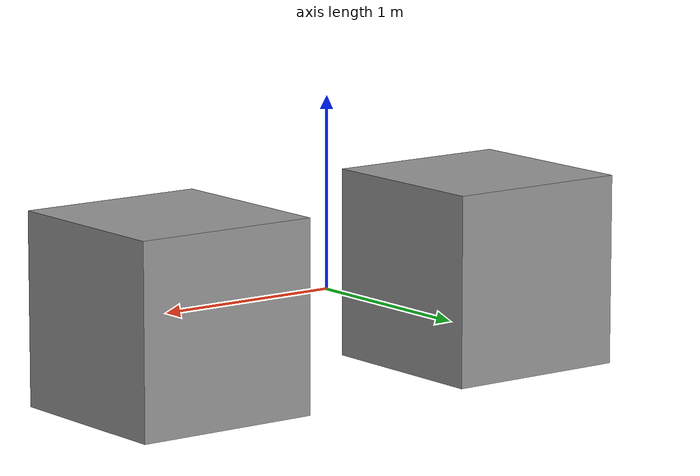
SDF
<?xml version='1.0'?>
<sdf version='1.6'>
  <model name='fixed_join_blocks'>
    <link name='link_2'>
      <pose frame=''>0.982983 -0.001948 0 0 -0 0</pose>
      <inertial>
        <mass>1</mass>
        <inertia>
          <ixx>0.166667</ixx>
          <ixy>0</ixy>
          <ixz>0</ixz>
          <iyy>0.166667</iyy>
          <iyz>0</iyz>
          <izz>0.166667</izz>
        </inertia>
      </inertial>
      <visual name='visual'>
        <pose frame=''>0 0 0 0 -0 0</pose>
        <geometry>
          <box>
            <size>1 1 1</size>
          </box>
        </geometry>
        <material>
          <lighting>1</lighting>
          <script>
            <uri>file://media/materials/scripts/gazebo.material</uri>
            <name>Gazebo/Grey</name>
          </script>
          <shader type='pixel'/>
          <ambient>0.3 0.3 0.3 1</ambient>
          <diffuse>0.7 0.7 0.7 1</diffuse>
          <specular>0.01 0.01 0.01 1</specular>
          <emissive>0 0 0 1</emissive>
        </material>
        <transparency>0</transparency>
        <cast_shadows>1</cast_shadows>
      </visual>
      <collision name='collision'>
        <laser_retro>0</laser_retro>
        <max_contacts>10</max_contacts>
        <pose frame=''>0 0 0 0 -0 0</pose>
        <geometry>
          <box>
            <size>1 1 1</size>
          </box>
        </geometry>
        <surface>
          <friction>
            <ode>
              <mu>1</mu>
              <mu2>1</mu2>
              <fdir1>0 0 0</fdir1>
              <slip1>0</slip1>
              <slip2>0</slip2>
            </ode>
            <torsional>
              <coefficient>1</coefficient>
              <patch_radius>0</patch_radius>
              <surface_radius>0</surface_radius>
              <use_patch_radius>1</use_patch_radius>
              <ode>
                <slip>0</slip>
              </ode>
            </torsional>
          </friction>
          <bounce>
            <restitution_coefficient>0</restitution_coefficient>
            <threshold>1e+06</threshold>
          </bounce>
          <contact>
            <collide_without_contact>0</collide_without_contact>
            <collide_without_contact_bitmask>1</collide_without_contact_bitmask>
            <collide_bitmask>1</collide_bitmask>
            <ode>
              <soft_cfm>0</soft_cfm>
              <soft_erp>0.2</soft_erp>
              <kp>1e+13</kp>
              <kd>1</kd>
              <max_vel>0.01</max_vel>
              <min_depth>0</min_depth>
            </ode>
            <bullet>
              <split_impulse>1</split_impulse>
              <split_impulse_penetration_threshold>-0.01</split_impulse_penetration_threshold>
              <soft_cfm>0</soft_cfm>
              <soft_erp>0.2</soft_erp>
              <kp>1e+13</kp>
              <kd>1</kd>
            </bullet>
          </contact>
        </surface>
      </collision>
    </link>
    <link name='link_3'>
      <pose frame=''>-0.982987 0.001943 0 0 -0 0</pose>
      <inertial>
        <mass>1</mass>
        <inertia>
          <ixx>0.166667</ixx>
          <ixy>0</ixy>
          <ixz>0</ixz>
          <iyy>0.166667</iyy>
          <iyz>0</iyz>
          <izz>0.166667</izz>
        </inertia>
      </inertial>
      <visual name='visual'>
        <pose frame=''>0 0 0 0 -0 0</pose>
        <geometry>
          <box>
            <size>1 1 1</size>
          </box>
        </geometry>
        <material>
          <lighting>1</lighting>
          <script>
            <uri>file://media/materials/scripts/gazebo.material</uri>
            <name>Gazebo/Grey</name>
          </script>
          <shader type='pixel'/>
          <ambient>0.3 0.3 0.3 1</ambient>
          <diffuse>0.7 0.7 0.7 1</diffuse>
          <specular>0.01 0.01 0.01 1</specular>
          <emissive>0 0 0 1</emissive>
        </material>
        <transparency>0</transparency>
        <cast_shadows>1</cast_shadows>
      </visual>
      <collision name='collision'>
        <laser_retro>0</laser_retro>
        <max_contacts>10</max_contacts>
        <pose frame=''>0 0 0 0 -0 0</pose>
        <geometry>
          <box>
            <size>1 1 1</size>
          </box>
        </geometry>
        <surface>
          <friction>
            <ode>
              <mu>1</mu>
              <mu2>1</mu2>
              <fdir1>0 0 0</fdir1>
              <slip1>0</slip1>
              <slip2>0</slip2>
            </ode>
            <torsional>
              <coefficient>1</coefficient>
              <patch_radius>0</patch_radius>
              <surface_radius>0</surface_radius>
              <use_patch_radius>1</use_patch_radius>
              <ode>
                <slip>0</slip>
              </ode>
            </torsional>
          </friction>
          <bounce>
            <restitution_coefficient>0</restitution_coefficient>
            <threshold>1e+06</threshold>
          </bounce>
          <contact>
            <collide_without_contact>0</collide_without_contact>
            <collide_without_contact_bitmask>1</collide_without_contact_bitmask>
            <collide_bitmask>1</collide_bitmask>
            <ode>
              <soft_cfm>0</soft_cfm>
              <soft_erp>0.2</soft_erp>
              <kp>1e+13</kp>
              <kd>1</kd>
              <max_vel>0.01</max_vel>
              <min_depth>0</min_depth>
            </ode>
            <bullet>
              <split_impulse>1</split_impulse>
              <split_impulse_penetration_threshold>-0.01</split_impulse_penetration_threshold>
              <soft_cfm>0</soft_cfm>
              <soft_erp>0.2</soft_erp>
              <kp>1e+13</kp>
              <kd>1</kd>
            </bullet>
          </contact>
        </surface>
      </collision>
    </link>
    <joint name='link_2_JOINT_0' type='fixed'>
      <parent>link_2</parent>
      <child>link_3</child>
      <pose frame=''>0 0 0 0 -0 0</pose>
      <physics>
        <ode>
          <limit>
            <cfm>0</cfm>
            <erp>0.2</erp>
          </limit>
          <suspension>
            <cfm>0</cfm>
            <erp>0.2</erp>
          </suspension>
        </ode>
      </physics>
    </joint>
    <static>0</static>
    <allow_auto_disable>1</allow_auto_disable>
  </model>
</sdf>
